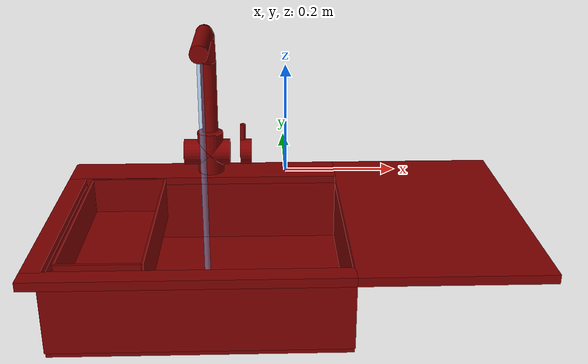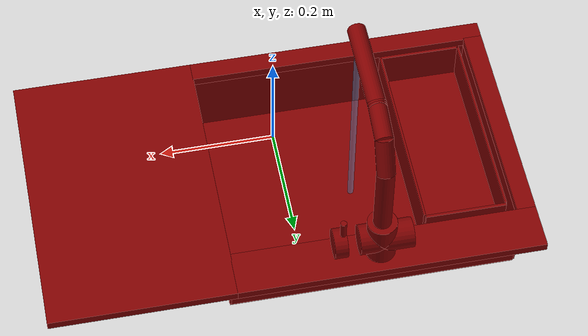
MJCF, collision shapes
<?xml version='1.0' encoding='UTF-8'?>
<mujoco model="model">
  <option timestep="0.002" gravity="0.0 0.0 -9.81"/>
  <compiler angle="radian"/>
  <asset>
    <mesh file="visuals/handle.obj" name="handle_vis"/>
    <mesh file="visuals/Body001.obj" name="Body001_vis"/>
    <mesh file="visuals/Shelf001.obj" name="Shelf001_vis"/>
    <mesh file="visuals/spout.obj" name="spout_vis"/>
    <texture file="visuals/T_BC001.png" name="Body001_material" type="2d"/>
    <material name="Body001_material" rgba="1 1 1 1.0" texture="Body001_material" shininess="0.1" specular="0.9"/>
    <texture file="visuals/T_BC001.png" name="handle_material" type="2d"/>
    <material name="handle_material" rgba="1 1 1 1.0" texture="handle_material" shininess="0.1" specular="0.9"/>
    <texture file="visuals/T_BC001.png" name="Shelf001_material" type="2d"/>
    <material name="Shelf001_material" rgba="1 1 1 1.0" texture="Shelf001_material" shininess="0.1" specular="0.9"/>
    <texture file="visuals/T_BC001.png" name="spout_material" type="2d"/>
    <material name="spout_material" rgba="1 1 1 1.0" texture="spout_material" shininess="0.1" specular="0.9"/>
  </asset>
  <default>
    <default class="visual">
      <geom conaffinity="0" contype="0" group="1" type="mesh"/>
    </default>
    <default class="collision">
      <geom group="0" rgba="0.5 0 0 0.5" solimp="0.998 0.998 0.001" solref="0.001 2"/>
    </default>
    <default class="spawn">
      <geom group="0" rgba="1 1 1 0.5" contype="0" conaffinity="0"/>
      <site group="0" rgba="1 1 1 0.5"/>
    </default>
    <default class="region">
      <geom group="1" conaffinity="0" contype="0" rgba="0 1 0 0"/>
    </default>
  </default>
  <worldbody>
    <body>
      <body name="object">
        <geom mesh="Body001_vis" type="mesh" solimp="0.998 0.998 0.001" solref="0.001 1" friction="0.95 0.3 0.1" class="visual" material="Body001_material"/>
        <geom class="collision" type="box" pos="0.27501065 0.00000203 -0.09386317" size="0.16661067306995392 0.2576976418495178 0.00833937805145979" quat="1.0 0.0 0.0 0.0"/>
        <geom class="collision" type="box" pos="-0.16691884 0.21640084 -0.09386317" size="0.2765880823135376 0.04129885882139206 0.00833937805145979" quat="1.0 0.0 0.0 0.0"/>
        <geom class="collision" type="box" pos="-0.16691886 -0.23994685 -0.09386317" size="0.2765880823135376 0.017748849466443062 0.00833937805145979" quat="1.0 0.0 0.0 0.0"/>
        <geom class="collision" type="box" pos="-0.42613342 -0.02279243 -0.09386317" size="0.017373472452163696 0.20309917628765106 0.00833937805145979" quat="1.0 0.0 0.0 0.0"/>
        <geom class="collision" type="box" pos="-0.41312125 -0.02188560 -0.17001355" size="0.004361288622021675 0.20219233632087708 0.06940042227506638" quat="1.0 0.0 0.0 0.0"/>
        <geom class="collision" type="box" pos="-0.15209527 -0.22558807 -0.17020974" size="0.26534855365753174 0.0033900218550115824 0.06970351934432983" quat="1.0 0.0 0.0 0.0"/>
        <geom class="collision" type="box" pos="-0.15245214 0.17823947 -0.17015108" size="0.26212137937545776 0.0031375016551464796 0.06956923007965088" quat="1.0 0.0 0.0 0.0"/>
        <geom class="collision" type="box" pos="0.11081918 -0.02396810 -0.17065500" size="0.0024191848933696747 0.20321932435035706 0.06953117251396179" quat="1.0 0.0 0.0 0.0"/>
        <geom class="collision" type="box" pos="-0.15153565 -0.02544202 -0.23541687" size="0.263597309589386 0.20313423871994019 0.011869825422763824" quat="1.0 0.0 0.0 0.0"/>
        <geom class="collision" type="cylinder" pos="-0.15153505 0.21518997 -0.04276923" size="0.02677016146481037 0.04431264102458954" quat="1.0 0.0 0.0 0.0"/>
        <geom class="collision" type="cylinder" pos="-0.15848030 0.21518997 -0.04276923" size="0.02677016146481037 0.047876179218292236" quat="0.7071068286895752 -0.0 0.7071067690849304 0.0"/>
        <body name="handle">
          <joint axis="1.0 0.0 0.0" pos="-0.08312724 0.21635896 -0.04289991" limited="true" name="handle_temp_joint" type="hinge" range="-0.7853981633974483 0.7853981633974483" damping="0.5" frictionloss="1" armature="2"/>
          <joint axis="0.0 1.0 0.0" pos="-0.08312724 0.21635896 -0.04289991" limited="true" name="handle_joint" type="hinge" range="0 0.5" damping="0.5" frictionloss="1" armature="2"/>
          <geom mesh="handle_vis" type="mesh" solimp="0.998 0.998 0.001" solref="0.001 1" friction="0.95 0.3 0.1" class="visual" material="handle_material"/>
          <geom class="collision" type="cylinder" pos="-0.07699107 0.21518997 -0.04276923" size="0.02677016146481037 0.011639920063316822" quat="0.7071068286895752 -0.0 0.7071067690849304 0.0"/>
          <geom name="handle_main" class="collision" type="cylinder" pos="-0.08293689 0.21631289 -0.00042087" size="0.005658527370542288 0.017425786703824997" quat="1.0 0.0 0.0 0.0"/>
        </body>
        <body name="Shelf001">
          <joint axis="0.0 0.0 1.0" pos="-0.31633934 -0.01416739 -0.12163008" limited="true" name="Shelf001_joint" range="0.0 0.1" type="slide" damping="1" frictionloss="1" armature=".01" stiffness="0.05"/>
          <geom mesh="Shelf001_vis" type="mesh" solimp="0.998 0.998 0.001" solref="0.001 1" friction="0.95 0.3 0.1" class="visual" material="Shelf001_material"/>
          <geom class="collision" type="box" pos="-0.24446099 -0.02435041 -0.12463368" size="0.0020581125281751156 0.18308784067630768 0.04250456392765045" quat="1.0 0.0 0.0 0.0"/>
          <geom class="collision" type="box" pos="-0.39237177 -0.02435041 -0.12463368" size="0.0020581125281751156 0.18308797478675842 0.042504601180553436" quat="1.0 0.0 0.0 0.0"/>
          <geom class="collision" type="box" pos="-0.31910479 -0.20485267 -0.12463368" size="0.073283351957798 0.002586996415629983 0.04250463843345642" quat="1.0 0.0 0.0 0.0"/>
          <geom class="collision" type="box" pos="-0.31910479 0.16242570 -0.12463368" size="0.073283351957798 0.0025869987439364195 0.04250467196106911" quat="1.0 0.0 0.0 0.0"/>
          <geom class="collision" type="box" pos="-0.31910479 -0.02201681 -0.16054667" size="0.073283351957798 0.1824236363172531 0.00659191096201539" quat="1.0 0.0 0.0 0.0"/>
        </body>
        <body name="spout">
          <joint axis="0.0 0.0 1.0" pos="-0.15061221 0.21635339 0.12103348" limited="true" name="spout_joint" range="-0.7853981633974483 0.7853981633974483" type="hinge" damping="10"/>
          <site type="cylinder" rgba="0.5 0.75 1 0.5" size="0.005574176553636789 0.21922387182712555" pos="-0.15033390 -0.01339574 -0.00876485" name="water"/>
          <geom mesh="spout_vis" type="mesh" solimp="0.998 0.998 0.001" solref="0.001 1" friction="0.95 0.3 0.1" class="visual" material="spout_material"/>
          <geom class="collision" type="cylinder" pos="-0.15075533 0.21604930 0.07876009" size="0.016185106709599495 0.07413582503795624" quat="1.0 0.0 0.0 0.0"/>
          <geom class="collision" type="cylinder" pos="-0.15075533 0.20402085 0.17824823" size="0.016185106709599495 0.03441175818443298" quat="0.9757527112960815 0.218875914812088 0.0 0.0"/>
          <geom class="collision" type="cylinder" pos="-0.15075533 0.05516291 0.22708788" size="0.016185106709599495 0.08616319298744202" quat="0.7071067094802856 0.70710688829422 0.0 0.0" name="spout_main"/>
          <geom class="collision" type="cylinder" pos="-0.15075533 0.16183915 0.21860635" size="0.016185106709599495 0.03368963673710823" quat="0.8078345656394958 0.5894092917442322 0.0 0.0"/>
        </body>
        <geom class="region" name="reg_basin" type="box" pos="-0.063627345 -0.023814909999999995 -0.150913275" size="0.168200435 0.19519337 0.065869095"/>
        <geom class="region" name="reg_main" type="box" pos="0.0 1.9999999999742446e-06 -0.162631055" size="0.44450696 0.25869770000000003 0.077540575"/>
      </body>
    </body>
  </worldbody>
  <actuator>
    <motor name="handle_joint_actuator" joint="handle_joint" gear="10"/>
    <motor name="handle_temp_joint_actuator" joint="handle_temp_joint" gear="10"/>
    <motor name="Shelf001_joint_actuator" joint="Shelf001_joint" gear="50"/>
    <motor name="spout_joint_actuator" joint="spout_joint" gear="10"/>
  </actuator>
</mujoco>
